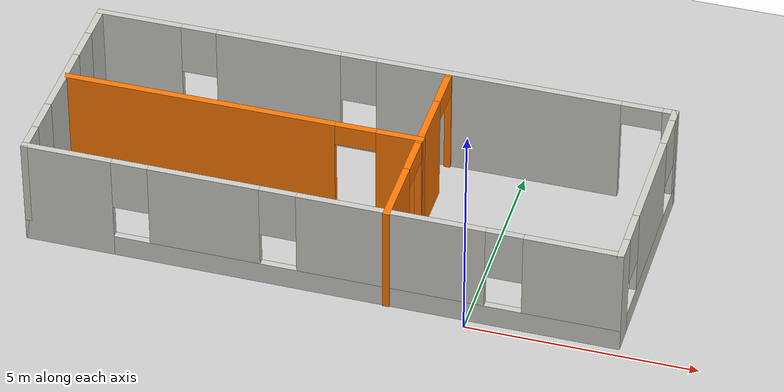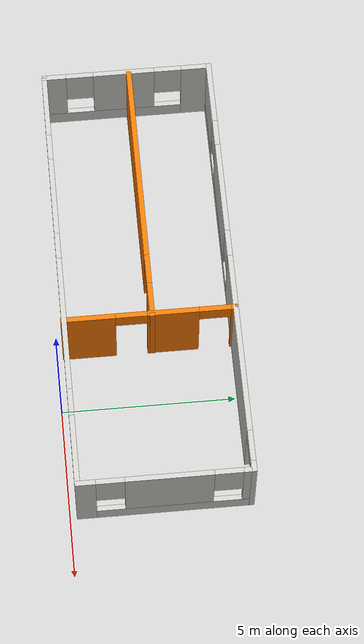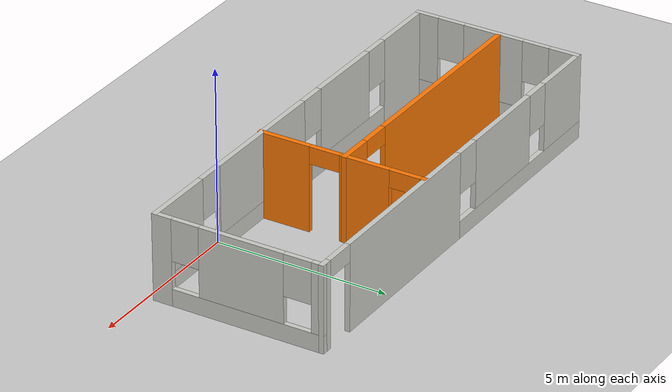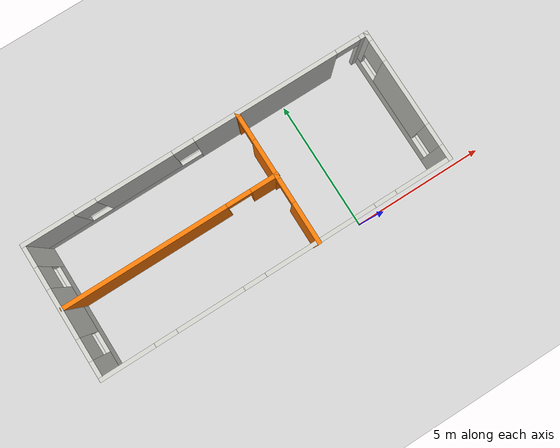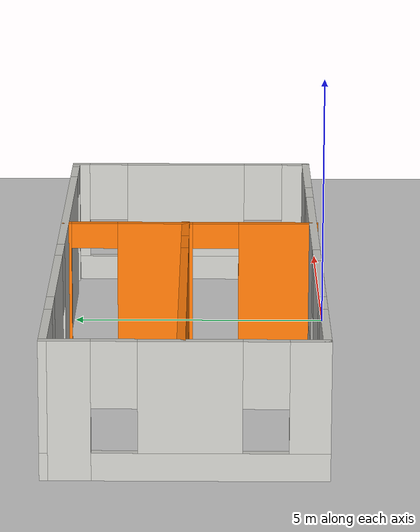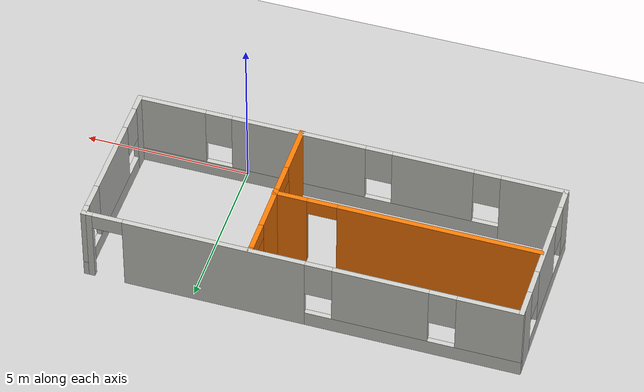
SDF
<sdf version="1.6">
 <world name="default">
  <light name="sun" type="directional">
   <pose>0 0 10 0 -0 0</pose>
   <diffuse>0.8 0.8 0.8 1</diffuse>
   <specular>0.2 0.2 0.2 1</specular>
   <attenuation>
    <range>1000</range>
    <constant>0.9</constant>
    <linear>0.01</linear>
    <quadratic>0.001</quadratic>
   </attenuation>
   <direction>-0.5 0.1 -0.9</direction>
  </light>
  <model name="ground_plane">
   <static>1</static>
   <link name="link">
    <collision name="collision">
     <geometry><plane><normal>0 0 1</normal><size>100 100</size></plane></geometry>
     <surface>
      <contact><collide_bitmask>65535</collide_bitmask></contact>
      <friction><ode><mu>100</mu><mu2>50</mu2></ode></friction>
     </surface>
    </collision>
    <visual name="visual">
     <cast_shadows>0</cast_shadows>
     <geometry><plane><normal>0 0 1</normal><size>100 100</size></plane></geometry>
     <material>
      <script><uri>file://media/materials/scripts/gazebo.material</uri><name>Gazebo/Grey</name></script>
     </material>
    </visual>
   </link>
  </model>
  <gravity>0 0 -9.8</gravity>
  <magnetic_field>6e-06 2.3e-05 -4.2e-05</magnetic_field>
  <atmosphere type="adiabatic"/>
  <physics name="default_physics" default="0" type="ode">
   <max_step_size>0.001</max_step_size>
   <real_time_factor>1</real_time_factor>
   <real_time_update_rate>1000</real_time_update_rate>
  </physics>
  <scene><ambient>0.4 0.4 0.4 1</ambient><background>0.7 0.7 0.7 1</background><shadows>1</shadows></scene>
  <spherical_coordinates>
   <surface_model>EARTH_WGS84</surface_model>
   <latitude_deg>0</latitude_deg>
   <longitude_deg>0</longitude_deg>
   <elevation>0</elevation>
   <heading_deg>0</heading_deg>
  </spherical_coordinates>
  <model name="mybuilding_1">
   <pose>-3.22125 2.67867 0 0 -0 0</pose>
   <link name="Wall_26">
    <pose>0 -2.41239 0 0 -0 0</pose>
    <visual name="Wall_26_Visual_0">
     <pose>-5.50386 0 1.25 0 -0 0</pose>
     <geometry><box><size>1.99228 0.15 2.5</size></box></geometry>
     <material>
      <script><uri>file://media/materials/scripts/gazebo.material</uri><name>Gazebo/CeilingTiled</name></script>
      <ambient>1 1 1 1</ambient>
     </material>
     <meta><layer>0</layer></meta>
    </visual>
    <collision name="Wall_26_Collision_0">
     <geometry><box><size>1.99228 0.15 2.5</size></box></geometry>
     <pose>-5.50386 0 1.25 0 -0 0</pose>
    </collision>
    <visual name="Wall_26_Visual_1">
     <pose>0.996138 0 0.25 0 -0 0</pose>
     <geometry><box><size>11.0077 0.15 0.5</size></box></geometry>
     <material>
      <script><uri>file://media/materials/scripts/gazebo.material</uri><name>Gazebo/CeilingTiled</name></script>
      <ambient>1 1 1 1</ambient>
     </material>
     <meta><layer>0</layer></meta>
    </visual>
    <collision name="Wall_26_Collision_1">
     <geometry><box><size>11.0077 0.15 0.5</size></box></geometry>
     <pose>0.996138 0 0.25 0 -0 0</pose>
    </collision>
    <visual name="Wall_26_Visual_2">
     <pose>-2.49082 0 1.5 0 -0 0</pose>
     <geometry><box><size>2.43381 0.15 2</size></box></geometry>
     <material>
      <script><uri>file://media/materials/scripts/gazebo.material</uri><name>Gazebo/CeilingTiled</name></script>
      <ambient>1 1 1 1</ambient>
     </material>
     <meta><layer>0</layer></meta>
    </visual>
    <collision name="Wall_26_Collision_2">
     <geometry><box><size>2.43381 0.15 2</size></box></geometry>
     <pose>-2.49082 0 1.5 0 -0 0</pose>
    </collision>
    <visual name="Wall_26_Visual_3">
     <pose>1.55577 0 1.5 0 -0 0</pose>
     <geometry><box><size>4.05936 0.15 2</size></box></geometry>
     <material>
      <script><uri>file://media/materials/scripts/gazebo.material</uri><name>Gazebo/CeilingTiled</name></script>
      <ambient>1 1 1 1</ambient>
     </material>
     <meta><layer>0</layer></meta>
    </visual>
    <collision name="Wall_26_Collision_3">
     <geometry><box><size>4.05936 0.15 2</size></box></geometry>
     <pose>1.55577 0 1.5 0 -0 0</pose>
    </collision>
    <visual name="Wall_26_Visual_4">
     <pose>5.44272 0 1.5 0 -0 0</pose>
     <geometry><box><size>2.11455 0.15 2</size></box></geometry>
     <material>
      <script><uri>file://media/materials/scripts/gazebo.material</uri><name>Gazebo/CeilingTiled</name></script>
      <ambient>1 1 1 1</ambient>
     </material>
     <meta><layer>0</layer></meta>
    </visual>
    <collision name="Wall_26_Collision_4">
     <geometry><box><size>2.11455 0.15 2</size></box></geometry>
     <pose>5.44272 0 1.5 0 -0 0</pose>
    </collision>
    <visual name="Wall_26_Visual_5">
     <pose>-4.10772 0 1.9 0 -0 0</pose>
     <geometry><box><size>0.8 0.15 1.2</size></box></geometry>
     <material>
      <script><uri>file://media/materials/scripts/gazebo.material</uri><name>Gazebo/CeilingTiled</name></script>
      <ambient>1 1 1 1</ambient>
     </material>
     <meta><layer>0</layer></meta>
    </visual>
    <collision name="Wall_26_Collision_5">
     <geometry><box><size>0.8 0.15 1.2</size></box></geometry>
     <pose>-4.10772 0 1.9 0 -0 0</pose>
    </collision>
    <visual name="Wall_26_Visual_6">
     <pose>-0.873914 0 1.9 0 -0 0</pose>
     <geometry><box><size>0.8 0.15 1.2</size></box></geometry>
     <material>
      <script><uri>file://media/materials/scripts/gazebo.material</uri><name>Gazebo/CeilingTiled</name></script>
      <ambient>1 1 1 1</ambient>
     </material>
     <meta><layer>0</layer></meta>
    </visual>
    <collision name="Wall_26_Collision_6">
     <geometry><box><size>0.8 0.15 1.2</size></box></geometry>
     <pose>-0.873914 0 1.9 0 -0 0</pose>
    </collision>
    <visual name="Wall_26_Visual_7">
     <pose>3.98545 0 1.9 0 -0 0</pose>
     <geometry><box><size>0.8 0.15 1.2</size></box></geometry>
     <material>
      <script><uri>file://media/materials/scripts/gazebo.material</uri><name>Gazebo/CeilingTiled</name></script>
      <ambient>1 1 1 1</ambient>
     </material>
     <meta><layer>0</layer></meta>
    </visual>
    <collision name="Wall_26_Collision_7">
     <geometry><box><size>0.8 0.15 1.2</size></box></geometry>
     <pose>3.98545 0 1.9 0 -0 0</pose>
    </collision>
   </link>
   <link name="Wall_27">
    <pose>6.425 0.012612 0 0 -0 1.5708</pose>
    <visual name="Wall_27_Visual_0">
     <pose>-2.21288 0 1.25 0 -0 0</pose>
     <geometry><box><size>0.574241 0.15 2.5</size></box></geometry>
     <material>
      <script><uri>file://media/materials/scripts/gazebo.material</uri><name>Gazebo/CeilingTiled</name></script>
      <ambient>1 1 1 1</ambient>
     </material>
     <meta><layer>0</layer></meta>
    </visual>
    <collision name="Wall_27_Collision_0">
     <geometry><box><size>0.574241 0.15 2.5</size></box></geometry>
     <pose>-2.21288 0 1.25 0 -0 0</pose>
    </collision>
    <visual name="Wall_27_Visual_1">
     <pose>0.287121 0 0.25 0 -0 0</pose>
     <geometry><box><size>4.42576 0.15 0.5</size></box></geometry>
     <material>
      <script><uri>file://media/materials/scripts/gazebo.material</uri><name>Gazebo/CeilingTiled</name></script>
      <ambient>1 1 1 1</ambient>
     </material>
     <meta><layer>0</layer></meta>
    </visual>
    <collision name="Wall_27_Collision_1">
     <geometry><box><size>4.42576 0.15 0.5</size></box></geometry>
     <pose>0.287121 0 0.25 0 -0 0</pose>
    </collision>
    <visual name="Wall_27_Visual_2">
     <pose>0.10844 0 1.5 0 -0 0</pose>
     <geometry><box><size>2.4684 0.15 2</size></box></geometry>
     <material>
      <script><uri>file://media/materials/scripts/gazebo.material</uri><name>Gazebo/CeilingTiled</name></script>
      <ambient>1 1 1 1</ambient>
     </material>
     <meta><layer>0</layer></meta>
    </visual>
    <collision name="Wall_27_Collision_2">
     <geometry><box><size>2.4684 0.15 2</size></box></geometry>
     <pose>0.10844 0 1.5 0 -0 0</pose>
    </collision>
    <visual name="Wall_27_Visual_3">
     <pose>2.32132 0 1.5 0 -0 0</pose>
     <geometry><box><size>0.357362 0.15 2</size></box></geometry>
     <material>
      <script><uri>file://media/materials/scripts/gazebo.material</uri><name>Gazebo/CeilingTiled</name></script>
      <ambient>1 1 1 1</ambient>
     </material>
     <meta><layer>0</layer></meta>
    </visual>
    <collision name="Wall_27_Collision_3">
     <geometry><box><size>0.357362 0.15 2</size></box></geometry>
     <pose>2.32132 0 1.5 0 -0 0</pose>
    </collision>
    <visual name="Wall_27_Visual_4">
     <pose>-1.52576 0 1.9 0 -0 0</pose>
     <geometry><box><size>0.8 0.15 1.2</size></box></geometry>
     <material>
      <script><uri>file://media/materials/scripts/gazebo.material</uri><name>Gazebo/CeilingTiled</name></script>
      <ambient>1 1 1 1</ambient>
     </material>
     <meta><layer>0</layer></meta>
    </visual>
    <collision name="Wall_27_Collision_4">
     <geometry><box><size>0.8 0.15 1.2</size></box></geometry>
     <pose>-1.52576 0 1.9 0 -0 0</pose>
    </collision>
    <visual name="Wall_27_Visual_5">
     <pose>1.74264 0 1.9 0 -0 0</pose>
     <geometry><box><size>0.8 0.15 1.2</size></box></geometry>
     <material>
      <script><uri>file://media/materials/scripts/gazebo.material</uri><name>Gazebo/CeilingTiled</name></script>
      <ambient>1 1 1 1</ambient>
     </material>
     <meta><layer>0</layer></meta>
    </visual>
    <collision name="Wall_27_Collision_5">
     <geometry><box><size>0.8 0.15 1.2</size></box></geometry>
     <pose>1.74264 0 1.9 0 -0 0</pose>
    </collision>
   </link>
   <link name="Wall_28">
    <pose>0 2.43761 0 0 -0 3.14159</pose>
    <visual name="Wall_28_Visual_0">
     <pose>-6.33238 0 1.25 0 -0 0</pose>
     <geometry><box><size>0.335241 0.15 2.5</size></box></geometry>
     <material>
      <script><uri>file://media/materials/scripts/gazebo.material</uri><name>Gazebo/CeilingTiled</name></script>
      <ambient>1 1 1 1</ambient>
     </material>
     <meta><layer>0</layer></meta>
    </visual>
    <collision name="Wall_28_Collision_0">
     <geometry><box><size>0.335241 0.15 2.5</size></box></geometry>
     <pose>-6.33238 0 1.25 0 -0 0</pose>
    </collision>
    <visual name="Wall_28_Visual_1">
     <pose>-2.55971 0 1.25 0 -0 0</pose>
     <geometry><box><size>5.4101 0.15 2.5</size></box></geometry>
     <material>
      <script><uri>file://media/materials/scripts/gazebo.material</uri><name>Gazebo/CeilingTiled</name></script>
      <ambient>1 1 1 1</ambient>
     </material>
     <meta><layer>0</layer></meta>
    </visual>
    <collision name="Wall_28_Collision_1">
     <geometry><box><size>5.4101 0.15 2.5</size></box></geometry>
     <pose>-2.55971 0 1.25 0 -0 0</pose>
    </collision>
    <visual name="Wall_28_Visual_2">
     <pose>3.32267 0 0.25 0 -0 0</pose>
     <geometry><box><size>6.35466 0.15 0.5</size></box></geometry>
     <material>
      <script><uri>file://media/materials/scripts/gazebo.material</uri><name>Gazebo/CeilingTiled</name></script>
      <ambient>1 1 1 1</ambient>
     </material>
     <meta><layer>0</layer></meta>
    </visual>
    <collision name="Wall_28_Collision_2">
     <geometry><box><size>6.35466 0.15 0.5</size></box></geometry>
     <pose>3.32267 0 0.25 0 -0 0</pose>
    </collision>
    <visual name="Wall_28_Visual_3">
     <pose>2.35247 0 1.5 0 -0 0</pose>
     <geometry><box><size>2.81426 0.15 2</size></box></geometry>
     <material>
      <script><uri>file://media/materials/scripts/gazebo.material</uri><name>Gazebo/CeilingTiled</name></script>
      <ambient>1 1 1 1</ambient>
     </material>
     <meta><layer>0</layer></meta>
    </visual>
    <collision name="Wall_28_Collision_3">
     <geometry><box><size>2.81426 0.15 2</size></box></geometry>
     <pose>2.35247 0 1.5 0 -0 0</pose>
    </collision>
    <visual name="Wall_28_Visual_4">
     <pose>5.5298 0 1.5 0 -0 0</pose>
     <geometry><box><size>1.9404 0.15 2</size></box></geometry>
     <material>
      <script><uri>file://media/materials/scripts/gazebo.material</uri><name>Gazebo/CeilingTiled</name></script>
      <ambient>1 1 1 1</ambient>
     </material>
     <meta><layer>0</layer></meta>
    </visual>
    <collision name="Wall_28_Collision_4">
     <geometry><box><size>1.9404 0.15 2</size></box></geometry>
     <pose>5.5298 0 1.5 0 -0 0</pose>
    </collision>
    <visual name="Wall_28_Visual_5">
     <pose>0.545345 0 1.9 0 -0 0</pose>
     <geometry><box><size>0.8 0.15 1.2</size></box></geometry>
     <material>
      <script><uri>file://media/materials/scripts/gazebo.material</uri><name>Gazebo/CeilingTiled</name></script>
      <ambient>1 1 1 1</ambient>
     </material>
     <meta><layer>0</layer></meta>
    </visual>
    <collision name="Wall_28_Collision_5">
     <geometry><box><size>0.8 0.15 1.2</size></box></geometry>
     <pose>0.545345 0 1.9 0 -0 0</pose>
    </collision>
    <visual name="Wall_28_Visual_6">
     <pose>4.1596 0 1.9 0 -0 0</pose>
     <geometry><box><size>0.8 0.15 1.2</size></box></geometry>
     <material>
      <script><uri>file://media/materials/scripts/gazebo.material</uri><name>Gazebo/CeilingTiled</name></script>
      <ambient>1 1 1 1</ambient>
     </material>
     <meta><layer>0</layer></meta>
    </visual>
    <collision name="Wall_28_Collision_6">
     <geometry><box><size>0.8 0.15 1.2</size></box></geometry>
     <pose>4.1596 0 1.9 0 -0 0</pose>
    </collision>
    <visual name="Wall_28_Visual_7">
     <pose>-5.71476 0 2.25 0 -0 0</pose>
     <geometry><box><size>0.9 0.15 0.5</size></box></geometry>
     <material>
      <script><uri>file://media/materials/scripts/gazebo.material</uri><name>Gazebo/CeilingTiled</name></script>
      <ambient>1 1 1 1</ambient>
     </material>
     <meta><layer>0</layer></meta>
    </visual>
    <collision name="Wall_28_Collision_7">
     <geometry><box><size>0.9 0.15 0.5</size></box></geometry>
     <pose>-5.71476 0 2.25 0 -0 0</pose>
    </collision>
   </link>
   <link name="Wall_29">
    <pose>-6.425 0.012612 0 0 0 -1.5708</pose>
    <visual name="Wall_29_Visual_0">
     <pose>-2.05328 0 1.25 0 -0 0</pose>
     <geometry><box><size>0.893448 0.15 2.5</size></box></geometry>
     <material>
      <script><uri>file://media/materials/scripts/gazebo.material</uri><name>Gazebo/CeilingTiled</name></script>
      <ambient>1 1 1 1</ambient>
     </material>
     <meta><layer>0</layer></meta>
    </visual>
    <collision name="Wall_29_Collision_0">
     <geometry><box><size>0.893448 0.15 2.5</size></box></geometry>
     <pose>-2.05328 0 1.25 0 -0 0</pose>
    </collision>
    <visual name="Wall_29_Visual_1">
     <pose>0.446724 0 0.25 0 -0 0</pose>
     <geometry><box><size>4.10655 0.15 0.5</size></box></geometry>
     <material>
      <script><uri>file://media/materials/scripts/gazebo.material</uri><name>Gazebo/CeilingTiled</name></script>
      <ambient>1 1 1 1</ambient>
     </material>
     <meta><layer>0</layer></meta>
    </visual>
    <collision name="Wall_29_Collision_1">
     <geometry><box><size>4.10655 0.15 0.5</size></box></geometry>
     <pose>0.446724 0 0.25 0 -0 0</pose>
    </collision>
    <visual name="Wall_29_Visual_2">
     <pose>0.090431 0 1.5 0 -0 0</pose>
     <geometry><box><size>1.79397 0.15 2</size></box></geometry>
     <material>
      <script><uri>file://media/materials/scripts/gazebo.material</uri><name>Gazebo/CeilingTiled</name></script>
      <ambient>1 1 1 1</ambient>
     </material>
     <meta><layer>0</layer></meta>
    </visual>
    <collision name="Wall_29_Collision_2">
     <geometry><box><size>1.79397 0.15 2</size></box></geometry>
     <pose>0.090431 0 1.5 0 -0 0</pose>
    </collision>
    <visual name="Wall_29_Visual_3">
     <pose>2.14371 0 1.5 0 -0 0</pose>
     <geometry><box><size>0.712586 0.15 2</size></box></geometry>
     <material>
      <script><uri>file://media/materials/scripts/gazebo.material</uri><name>Gazebo/CeilingTiled</name></script>
      <ambient>1 1 1 1</ambient>
     </material>
     <meta><layer>0</layer></meta>
    </visual>
    <collision name="Wall_29_Collision_3">
     <geometry><box><size>0.712586 0.15 2</size></box></geometry>
     <pose>2.14371 0 1.5 0 -0 0</pose>
    </collision>
    <visual name="Wall_29_Visual_4">
     <pose>-1.20655 0 1.9 0 -0 0</pose>
     <geometry><box><size>0.8 0.15 1.2</size></box></geometry>
     <material>
      <script><uri>file://media/materials/scripts/gazebo.material</uri><name>Gazebo/CeilingTiled</name></script>
      <ambient>1 1 1 1</ambient>
     </material>
     <meta><layer>0</layer></meta>
    </visual>
    <collision name="Wall_29_Collision_4">
     <geometry><box><size>0.8 0.15 1.2</size></box></geometry>
     <pose>-1.20655 0 1.9 0 -0 0</pose>
    </collision>
    <visual name="Wall_29_Visual_5">
     <pose>1.38741 0 1.9 0 -0 0</pose>
     <geometry><box><size>0.8 0.15 1.2</size></box></geometry>
     <material>
      <script><uri>file://media/materials/scripts/gazebo.material</uri><name>Gazebo/CeilingTiled</name></script>
      <ambient>1 1 1 1</ambient>
     </material>
     <meta><layer>0</layer></meta>
    </visual>
    <collision name="Wall_29_Collision_5">
     <geometry><box><size>0.8 0.15 1.2</size></box></geometry>
     <pose>1.38741 0 1.9 0 -0 0</pose>
    </collision>
   </link>
   <link name="Wall_31">
    <pose>1.47795 -0.012612 0 0 0 -1.5708</pose>
    <visual name="Wall_31_Visual_0">
     <pose>-2.41081 0 1.25 0 -0 0</pose>
     <geometry><box><size>0.178379 0.15 2.5</size></box></geometry>
     <material>
      <script><uri>file://media/materials/scripts/gazebo.material</uri><name>Gazebo/Grey</name></script>
      <ambient>0.996078 0.47451 0.0196078 1</ambient>
     </material>
     <meta><layer>0</layer></meta>
    </visual>
    <collision name="Wall_31_Collision_0">
     <geometry><box><size>0.178379 0.15 2.5</size></box></geometry>
     <pose>-2.41081 0 1.25 0 -0 0</pose>
    </collision>
    <visual name="Wall_31_Visual_1">
     <pose>-0.687043 0 1.25 0 -0 0</pose>
     <geometry><box><size>1.46915 0.15 2.5</size></box></geometry>
     <material>
      <script><uri>file://media/materials/scripts/gazebo.material</uri><name>Gazebo/Grey</name></script>
      <ambient>0.996078 0.47451 0.0196078 1</ambient>
     </material>
     <meta><layer>0</layer></meta>
    </visual>
    <collision name="Wall_31_Collision_1">
     <geometry><box><size>1.46915 0.15 2.5</size></box></geometry>
     <pose>-0.687043 0 1.25 0 -0 0</pose>
    </collision>
    <visual name="Wall_31_Visual_2">
     <pose>1.72377 0 1.25 0 -0 0</pose>
     <geometry><box><size>1.55246 0.15 2.5</size></box></geometry>
     <material>
      <script><uri>file://media/materials/scripts/gazebo.material</uri><name>Gazebo/Grey</name></script>
      <ambient>0.996078 0.47451 0.0196078 1</ambient>
     </material>
     <meta><layer>0</layer></meta>
    </visual>
    <collision name="Wall_31_Collision_2">
     <geometry><box><size>1.55246 0.15 2.5</size></box></geometry>
     <pose>1.72377 0 1.25 0 -0 0</pose>
    </collision>
    <visual name="Wall_31_Visual_3">
     <pose>-1.87162 0 2.25 0 -0 0</pose>
     <geometry><box><size>0.9 0.15 0.5</size></box></geometry>
     <material>
      <script><uri>file://media/materials/scripts/gazebo.material</uri><name>Gazebo/Grey</name></script>
      <ambient>0.996078 0.47451 0.0196078 1</ambient>
     </material>
     <meta><layer>0</layer></meta>
    </visual>
    <collision name="Wall_31_Collision_3">
     <geometry><box><size>0.9 0.15 0.5</size></box></geometry>
     <pose>-1.87162 0 2.25 0 -0 0</pose>
    </collision>
    <visual name="Wall_31_Visual_4">
     <pose>0.497535 0 2.25 0 -0 0</pose>
     <geometry><box><size>0.9 0.15 0.5</size></box></geometry>
     <material>
      <script><uri>file://media/materials/scripts/gazebo.material</uri><name>Gazebo/Grey</name></script>
      <ambient>0.996078 0.47451 0.0196078 1</ambient>
     </material>
     <meta><layer>0</layer></meta>
    </visual>
    <collision name="Wall_31_Collision_4">
     <geometry><box><size>0.9 0.15 0.5</size></box></geometry>
     <pose>0.497535 0 2.25 0 -0 0</pose>
    </collision>
   </link>
   <link name="Wall_33">
    <pose>-2.42976 0.077819 0 0 -0 3.14159</pose>
    <visual name="Wall_33_Visual_0">
     <pose>-3.47848 0 1.25 0 -0 0</pose>
     <geometry><box><size>1.04303 0.15 2.5</size></box></geometry>
     <material>
      <script><uri>file://media/materials/scripts/gazebo.material</uri><name>Gazebo/Grey</name></script>
      <ambient>0.996078 0.47451 0.0196078 1</ambient>
     </material>
     <meta><layer>0</layer></meta>
    </visual>
    <collision name="Wall_33_Collision_0">
     <geometry><box><size>1.04303 0.15 2.5</size></box></geometry>
     <pose>-3.47848 0 1.25 0 -0 0</pose>
    </collision>
    <visual name="Wall_33_Visual_1">
     <pose>0.971517 0 1.25 0 -0 0</pose>
     <geometry><box><size>6.05697 0.15 2.5</size></box></geometry>
     <material>
      <script><uri>file://media/materials/scripts/gazebo.material</uri><name>Gazebo/Grey</name></script>
      <ambient>0.996078 0.47451 0.0196078 1</ambient>
     </material>
     <meta><layer>0</layer></meta>
    </visual>
    <collision name="Wall_33_Collision_1">
     <geometry><box><size>6.05697 0.15 2.5</size></box></geometry>
     <pose>0.971517 0 1.25 0 -0 0</pose>
    </collision>
    <visual name="Wall_33_Visual_2">
     <pose>-2.50697 0 2.25 0 -0 0</pose>
     <geometry><box><size>0.9 0.15 0.5</size></box></geometry>
     <material>
      <script><uri>file://media/materials/scripts/gazebo.material</uri><name>Gazebo/Grey</name></script>
      <ambient>0.996078 0.47451 0.0196078 1</ambient>
     </material>
     <meta><layer>0</layer></meta>
    </visual>
    <collision name="Wall_33_Collision_2">
     <geometry><box><size>0.9 0.15 0.5</size></box></geometry>
     <pose>-2.50697 0 2.25 0 -0 0</pose>
    </collision>
   </link>
   <static>1</static>
  </model>
  <plugin filename="libcollision_map_creator.so" name="collision_map_creator"/>
 </world>
</sdf>
